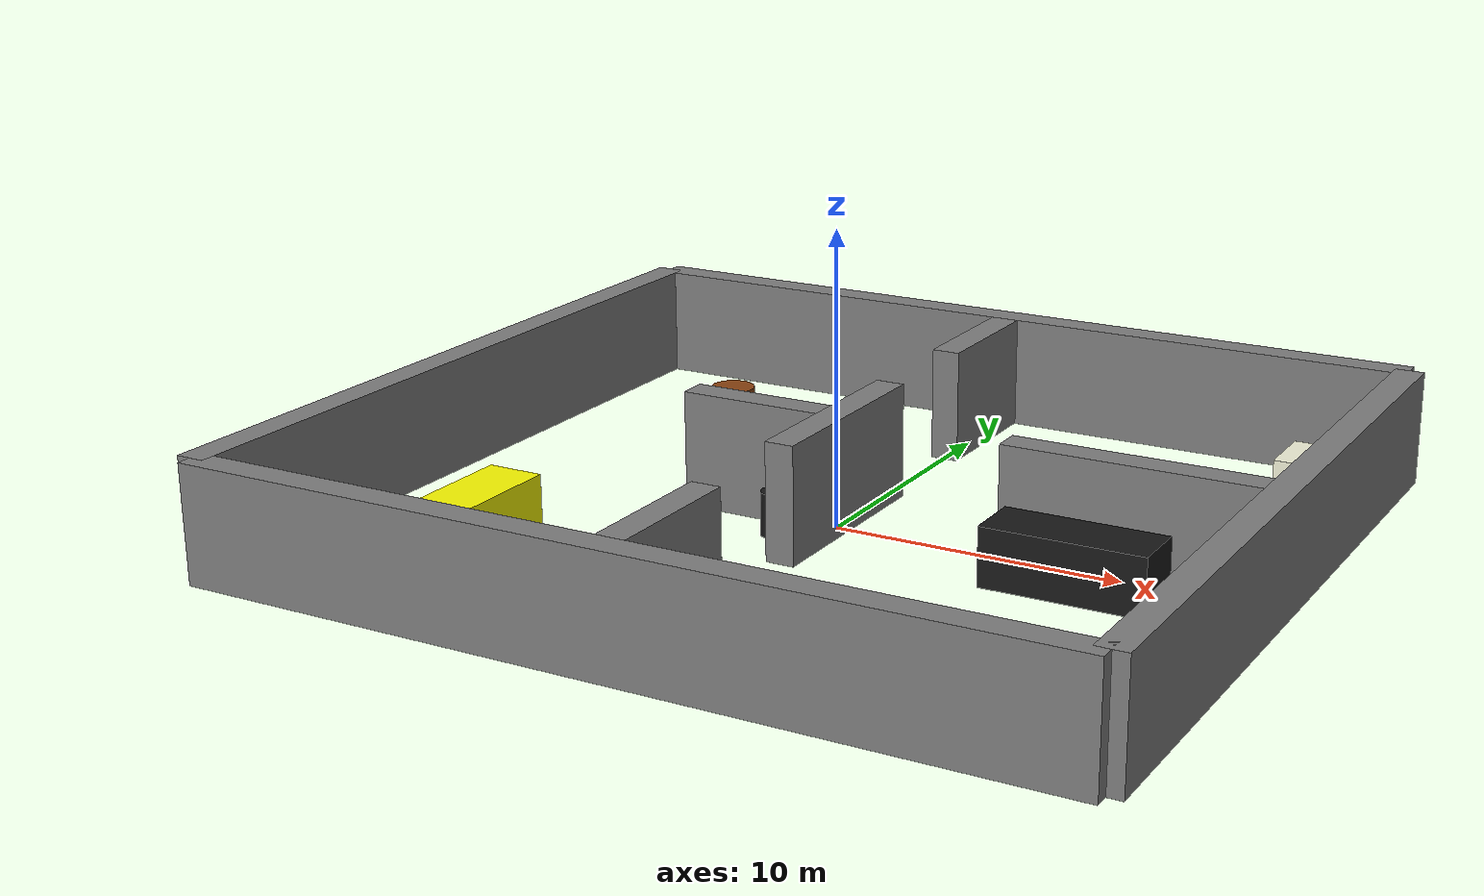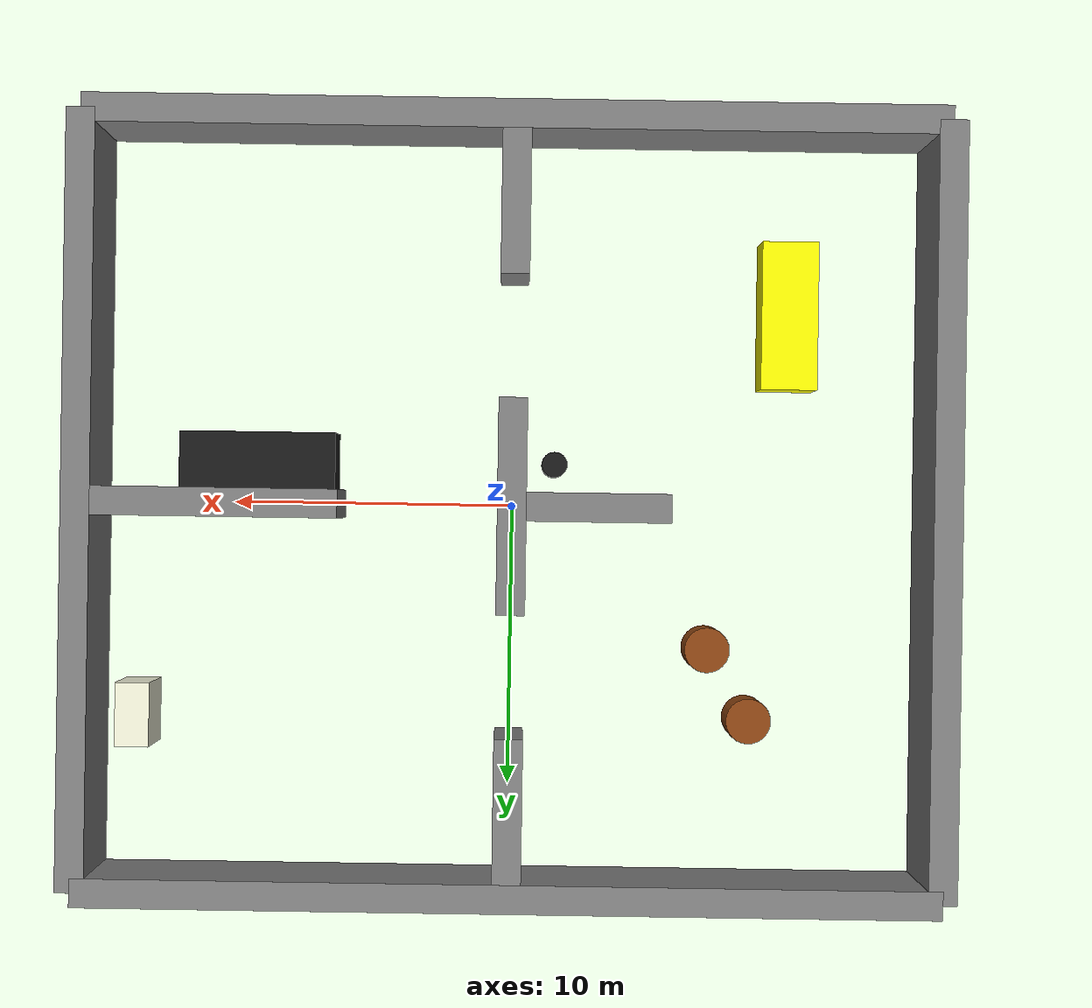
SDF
<?xml version="1.0" ?>
<sdf version='1.10'>
<model name='cenario1'>
      <static>true</static>
      <pose>0 0 0 0 0 0</pose>

      <!-- PAREDE NORTE (superior completa) -->
      <link name='parede_norte'>
          <pose>0 13.5 2.0 0 0 0</pose>
          <visual name='visual'>
              <geometry>
                  <box>
                      <size>30.0 1.0 4.0</size>
                  </box>
              </geometry>
              <material>
                  <ambient>0.5 0.5 0.5 1</ambient>
                  <diffuse>0.5 0.5 0.5 1</diffuse>
                  <specular>0.3 0.3 0.3 1</specular>
              </material>
          </visual>
          <collision name='collision'>
              <geometry>
                  <box>
                      <size>30.0 1.0 4.0</size>
                  </box>
              </geometry>
          </collision>
      </link>

      <!-- PAREDE LESTE (direita completa) -->
      <link name='parede_leste'>
          <pose>15 0 2.0 0 0 0</pose>
          <visual name='visual'>
              <geometry>
                  <box>
                      <size>1.0 27.0 4.0</size>
                  </box>
              </geometry>
              <material>
                  <ambient>0.5 0.5 0.5 1</ambient>
                  <diffuse>0.5 0.5 0.5 1</diffuse>
                  <specular>0.3 0.3 0.3 1</specular>
              </material>
          </visual>
          <collision name='collision'>
              <geometry>
                  <box>
                      <size>1.0 27.0 4.0</size>
                  </box>
              </geometry>
          </collision>
      </link>

      <!-- PAREDE OESTE (esquerda completa) -->
      <link name='parede_oeste'>
          <pose>-15 0 2.0 0 0 0</pose>
          <visual name='visual'>
              <geometry>
                  <box>
                      <size>1.0 27.0 4.0</size>
                  </box>
              </geometry>
              <material>
                  <ambient>0.5 0.5 0.5 1</ambient>
                  <diffuse>0.5 0.5 0.5 1</diffuse>
                  <specular>0.3 0.3 0.3 1</specular>
              </material>
          </visual>
          <collision name='collision'>
              <geometry>
                  <box>
                      <size>1.0 27.0 4.0</size>
                  </box>
              </geometry>
          </collision>
      </link>

      <!-- PAREDE SUL -->
      <link name='parede_sul_dir'>
          <pose>0 -13.5 2.0 0 0 0</pose>
          <visual name='visual'>
              <geometry>
                  <box>
                      <size>30.0 1.0 4.0</size>
                  </box>
              </geometry>
              <material>
                  <ambient>0.5 0.5 0.5 1</ambient>
                  <diffuse>0.5 0.5 0.5 1</diffuse>
                  <specular>0.3 0.3 0.3 1</specular>
              </material>
          </visual>
          <collision name='collision'>
              <geometry>
                  <box>
                      <size>30.0 1.0 4.0</size>
                  </box>
              </geometry>
          </collision>
      </link>

      <!-- DIVISÓRIA VERTICAL CENTRO -->
      <link name='divisoria_vertical_centro'>
          <pose>0 0 2.0 0 0 0</pose>
          <visual name='visual'>
              <geometry>
                  <box>
                      <size>1.0 7.5 4.0</size>
                  </box>
              </geometry>
              <material>
                  <ambient>0.5 0.5 0.5 1</ambient>
                  <diffuse>0.5 0.5 0.5 1</diffuse>
                  <specular>0.3 0.3 0.3 1</specular>
              </material>
          </visual>
          <collision name='collision'>
              <geometry>
                  <box>
                      <size>1.0 7.5 4.0</size>
                  </box>
              </geometry>
          </collision>
      </link>

      <!-- DIVISÓRIA VERTICAL SUL -->
      <link name='divisoria_vertical_sul'>
          <pose>0 -10.5 2.0 0 0 0</pose>
          <visual name='visual'>
              <geometry>
                  <box>
                      <size>1.0 5 4.0</size>
                  </box>
              </geometry>
              <material>
                  <ambient>0.5 0.5 0.5 1</ambient>
                  <diffuse>0.5 0.5 0.5 1</diffuse>
                  <specular>0.3 0.3 0.3 1</specular>
              </material>
          </visual>
          <collision name='collision'>
              <geometry>
                  <box>
                      <size>1.0 5 4.0</size>
                  </box>
              </geometry>
          </collision>
      </link>

      <!-- DIVISÓRIA VERTICAL NORTE -->
      <link name='divisoria_vertical_norte'>
          <pose>0 10.5 2.0 0 0 0</pose>
          <visual name='visual'>
              <geometry>
                  <box>
                      <size>1.0 5 4.0</size>
                  </box>
              </geometry>
              <material>
                  <ambient>0.5 0.5 0.5 1</ambient>
                  <diffuse>0.5 0.5 0.5 1</diffuse>
                  <specular>0.3 0.3 0.3 1</specular>
              </material>
          </visual>
          <collision name='collision'>
              <geometry>
                  <box>
                      <size>1.0 5 4.0</size>
                  </box>
              </geometry>
          </collision>
      </link>

      <!-- PAREDE HORIZONTAL CENTRO (corredor central com aberturas) -->
      <link name='horizontal_centro'>
          <pose>-3 0 2.0 0 0 0</pose>
          <visual name='visual'>
              <geometry>
                  <box>
                      <size>5 1.0 4.0</size>
                  </box>
              </geometry>
              <material>
                  <ambient>0.5 0.5 0.5 1</ambient>
                  <diffuse>0.5 0.5 0.5 1</diffuse>
                  <specular>0.3 0.3 0.3 1</specular>
              </material>
          </visual>
          <collision name='collision'>
              <geometry>
                  <box>
                      <size>5 1.0 4.0</size>
                  </box>
              </geometry>
          </collision>
      </link>

      <!-- PAREDE HORIZONTAL DIREITA (corredor central com aberturas) -->
      <link name='horizontal_dir'>
          <pose>10.5 0 2.0 0 0 0</pose>
          <visual name='visual'>
              <geometry>
                  <box>
                      <size>9 1.0 4.0</size>
                  </box>
              </geometry>
              <material>
                  <ambient>0.5 0.5 0.5 1</ambient>
                  <diffuse>0.5 0.5 0.5 1</diffuse>
                  <specular>0.3 0.3 0.3 1</specular>
              </material>
          </visual>
          <collision name='collision'>
              <geometry>
                  <box>
                      <size>9 1.0 4.0</size>
                  </box>
              </geometry>
          </collision>
      </link>

        <!-- ==== Moveis ==== -->

      <!-- MESA AMARELA (retângulo baixo) - MOVIDA PROPORCIONALMENTE -->
      <link name='mesa_amarela'>
          <pose>-9.75 -6.9 0.85 0 0 0</pose>
          <visual name='visual'>
              <geometry>
                  <box>
                      <size>2.0 5.25 1.7</size>
                  </box>
              </geometry>
              <material>
                  <ambient>1.0 1.0 0.0 1</ambient>
                  <diffuse>1.0 1.0 0.0 1</diffuse>
                  <specular>0.5 0.5 0.0 1</specular>
              </material>
          </visual>
          <collision name='collision'>
              <geometry>
                  <box>
                      <size>2.0 5.25 1.7</size>
                  </box>
              </geometry>
          </collision>
      </link>

      <!-- CILINDRO PRETO (em pé) - MOVIDO PROPORCIONALMENTE -->
      <link name='cilindro_preto'>
          <pose>-1.5 -1.5 0.75 0 0 0</pose>
          <visual name='visual'>
              <geometry>
                  <cylinder>
                      <radius>0.45</radius>
                      <length>1.5</length>
                  </cylinder>
              </geometry>
              <material>
                  <ambient>0.1 0.1 0.1 1</ambient>
                  <diffuse>0.1 0.1 0.1 1</diffuse>
                  <specular>0.3 0.3 0.3 1</specular>
              </material>
          </visual>
          <collision name='collision'>
              <geometry>
                  <cylinder>
                      <radius>0.45</radius>
                      <length>1.5</length>
                  </cylinder>
              </geometry>
          </collision>
      </link>

      <!-- MESA PRETA (retângulo baixo) - MOVIDA PROPORCIONALMENTE -->
      <link name='mesa_preta'>
          <pose>9 -1.5 1 0 0 0</pose>
          <visual name='visual'>
              <geometry>
                  <box>
                      <size>5.5 2 2</size>
                  </box>
              </geometry>
              <material>
                  <ambient>0.1 0.1 0.1 1</ambient>
                  <diffuse>0.1 0.1 0.1 1</diffuse>
                  <specular>0.3 0.3 0.3 1</specular>
              </material>
          </visual>
          <collision name='collision'>
              <geometry>
                  <box>
                      <size>5.5 2 2</size>
                  </box>
              </geometry>
          </collision>
      </link>

      <!-- ARMÁRIO BEGE (retângulo alto) - MOVIDO PROPORCIONALMENTE -->
      <link name='armario_bege'>
          <pose>13.2 7.5 1.25 0 0 0</pose>
          <visual name='visual'>
              <geometry>
                  <box>
                      <size>1.2 2.25 2.5</size>
                  </box>
              </geometry>
              <material>
                  <ambient>0.96 0.96 0.86 1</ambient>
                  <diffuse>0.96 0.96 0.86 1</diffuse>
                  <specular>0.3 0.3 0.3 1</specular>
              </material>
          </visual>
          <collision name='collision'>
              <geometry>
                  <box>
                      <size>1.2 2.25 2.5</size>
                  </box>
              </geometry>
          </collision>
      </link>

      <!-- CILINDRO MARROM 1 (em pé) - MOVIDO PROPORCIONALMENTE -->
      <link name='cilindro_marrom_1'>
          <pose>-7 5 0.8 0 0 0</pose>
          <visual name='visual'>
              <geometry>
                  <cylinder>
                      <radius>0.8</radius>
                      <length>1.6</length>
                  </cylinder>
              </geometry>
              <material>
                  <ambient>0.55 0.27 0.07 1</ambient>
                  <diffuse>0.55 0.27 0.07 1</diffuse>
                  <specular>0.3 0.15 0.05 1</specular>
              </material>
          </visual>
          <collision name='collision'>
              <geometry>
                  <cylinder>
                      <radius>0.8</radius>
                      <length>1.6</length>
                  </cylinder>
              </geometry>
          </collision>
      </link>

      <!-- CILINDRO MARROM 2 (em pé) - MOVIDO PROPORCIONALMENTE -->
      <link name='cilindro_marrom_2'>
          <pose>-8.5 7.5 0.8 0 0 0</pose>
          <visual name='visual'>
              <geometry>
                  <cylinder>
                      <radius>0.8</radius>
                      <length>1.6</length>
                  </cylinder>
              </geometry>
              <material>
                  <ambient>0.55 0.27 0.07 1</ambient>
                  <diffuse>0.55 0.27 0.07 1</diffuse>
                  <specular>0.3 0.15 0.05 1</specular>
              </material>
          </visual>
          <collision name='collision'>
              <geometry>
                  <cylinder>
                      <radius>0.8</radius>
                      <length>1.6</length>
                  </cylinder>
              </geometry>
          </collision>
      </link>

  </model>
</sdf>
